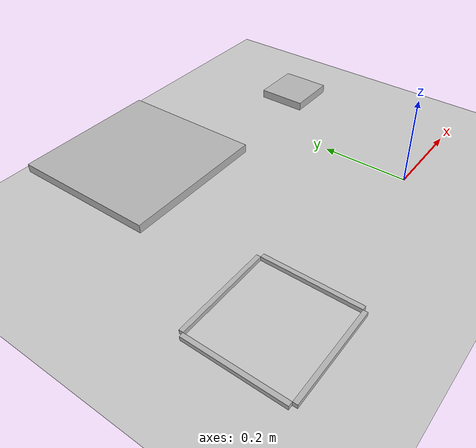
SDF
<sdf version="1.4">
 <world name="default">
  <physics type="ode"><real_time_update_rate>1000</real_time_update_rate></physics>
  <include><uri>model://ground_plane</uri></include>
  <light type="directional" name="sun">
   <pose>0 0 10 0 0 0</pose>
   <diffuse>0.8 0.8 0.8 1</diffuse>
   <attenuation>
    <range>1000</range>
    <constant>0.9</constant>
    <linear>0.01</linear>
    <quadratic>0.001</quadratic>
   </attenuation>
   <direction>-0.5 0.1 -0.9</direction>
  </light>
  <include>
   <pose>-0.4 0.4 -0.35 0.000000 0.000000 0.000000</pose>
   <uri>/home/kevin/research/gazebo/evaluation_platform_connect_to_AR605/models/table</uri>
  </include>
  <include>
   <pose>0 0.3 -0.35 0.000000 0.000000 0.000000</pose>
   <uri>/home/kevin/research/gazebo/evaluation_platform_connect_to_AR605/models/smalltable</uri>
  </include>
  <include>
   <pose>-0.5 0 0  0.000000 0.000000 0.000000</pose>
   <uri>/home/kevin/research/gazebo/arm_control_AR605/model/fixer_ar07</uri>
  </include>
  <plugin name="evaluation_platform_plugin" filename="/home/kevin/research/gazebo/evaluation_platform_connect_to_AR605/Debug/libevaluation_platform_connect_to_AR605.so"/>
 </world>
</sdf>

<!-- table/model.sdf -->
<sdf version="1.4">

<model name="table">
<static>true</static>

<link name="link">
			<pose>0.000000 0.000000 0.473684 0.000000 0.000000 0.000000</pose>
        <inertial>
            <mass>1</mass>
            <inertia>
               <ixx>0.5</ixx>
               <ixy>0.0</ixy>
               <iyy>0.5</iyy>
               <ixz>0.0</ixz>
               <iyz>0.0</iyz>
               <izz>0.5</izz>
            </inertia>
         </inertial>
			<collision name="collision">
				<geometry>
				<box>
					<size>0.3 0.3 0.0175</size>
				</box>
        </geometry>
      </collision>
      <visual name="visual">
        <geometry>
				<box>
					<size>0.3 0.3 0.0175</size>
				</box>
		  </geometry>
      </visual>
    </link>

</model>
</sdf>

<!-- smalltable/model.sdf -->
<sdf version="1.4">

<model name="smalltable">
<static>true</static>

<link name="link">
			<pose>0.000000 0.000000 0.473684 0.000000 0.000000 0.000000</pose>
        <inertial>
            <mass>1</mass>
            <inertia>
               <ixx>0.5</ixx>
               <ixy>0.0</ixy>
               <iyy>0.5</iyy>
               <ixz>0.0</ixz>
               <iyz>0.0</iyz>
               <izz>0.5</izz>
            </inertia>
         </inertial>
			<collision name="collision">
				<geometry>
				<box>
					<size>0.1 0.1 0.0175</size>
				</box>
        </geometry>
      </collision>
      <visual name="visual">
        <geometry>
				<box>
					<size>0.1 0.1 0.0175</size>
				</box>
		  </geometry>
      </visual>
    </link>

</model>
</sdf>

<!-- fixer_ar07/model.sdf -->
<sdf version="1.4">

 <model name="fixer_ar07">
         <static>true</static>
         <link name="fixer">
            <pose>-0.115 0.000000 0.005 0.000000 0.000000 0.000000</pose>
            <inertial>
               <mass>.1</mass>
               <inertia>
                  <ixx>0.05</ixx>
                  <ixy>0.0</ixy>
                  <iyy>0.05</iyy>
                  <ixz>0.0</ixz>
                  <iyz>0.0</iyz>
                  <izz>0.05</izz>
               </inertia>
            </inertial>
            <collision name="fixer">
               <surface>
                  <friction>
                     <ode>
                        <mu>100000.0</mu>
                        <mu2>100000.0</mu2>
                        <slip1>0.0</slip1>
                        <slip2>0.0</slip2>
                     </ode>
                  </friction>
               </surface>
               <geometry>
                  <box>
                     <size>0.01 0.22  0.01</size>
                  </box>
               </geometry>
            </collision>
            <visual name="visual">
               <geometry>
                  <box>
                     <size> 0.01 0.22 0.01</size>
                  </box>
               </geometry>
            </visual>
         </link>
         <link name="fixr">
            <pose> 0.000000 -0.115 0.005 0.000000 0.000000 0.000000</pose>
            <inertial>
               <mass>.1</mass>
               <inertia>
                  <ixx>0.05</ixx>
                  <ixy>0.0</ixy>
                  <iyy>0.05</iyy>
                  <ixz>0.0</ixz>
                  <iyz>0.0</iyz>
                  <izz>0.05</izz>
               </inertia>
            </inertial>
            <collision name="fixer">
               <surface>
                  <friction>
                     <ode>
                        <mu>100000.0</mu>
                        <mu2>100000.0</mu2>
                        <slip1>0.0</slip1>
                        <slip2>0.0</slip2>
                     </ode>
                  </friction>
               </surface>
               <geometry>
                  <box>
                     <size>0.22 0.01   0.01</size>
                  </box>
               </geometry>
            </collision>
            <visual name="visual">
               <geometry>
                  <box>
                     <size> 0.22 0.01 0.01</size>
                  </box>
               </geometry>
            </visual>
         </link>

         <link name="fixefr">
            <pose>0.115 0.000000 0.005 0.000000 0.000000 0.000000</pose>
            <inertial>
               <mass>.1</mass>
               <inertia>
                  <ixx>0.05</ixx>
                  <ixy>0.0</ixy>
                  <iyy>0.05</iyy>
                  <ixz>0.0</ixz>
                  <iyz>0.0</iyz>
                  <izz>0.05</izz>
               </inertia>
            </inertial>
            <collision name="fixer">
               <surface>
                  <friction>
                     <ode>
                        <mu>100000.0</mu>
                        <mu2>100000.0</mu2>
                        <slip1>0.0</slip1>
                        <slip2>0.0</slip2>
                     </ode>
                  </friction>
               </surface>
               <geometry>
                  <box>
                     <size>0.01 0.22  0.01</size>
                  </box>
               </geometry>
            </collision>
            <visual name="visual">
               <geometry>
                  <box>
                     <size> 0.01 0.22 0.01</size>
                  </box>
               </geometry>
            </visual>
         </link>
         <link name="fqixr">
            <pose> 0.000000 0.115 0.005 0.000000 0.000000 0.000000</pose>
            <inertial>
               <mass>.1</mass>
               <inertia>
                  <ixx>0.05</ixx>
                  <ixy>0.0</ixy>
                  <iyy>0.05</iyy>
                  <ixz>0.0</ixz>
                  <iyz>0.0</iyz>
                  <izz>0.05</izz>
               </inertia>
            </inertial>
            <collision name="fixer">
               <surface>
                  <friction>
                     <ode>
                        <mu>100000.0</mu>
                        <mu2>100000.0</mu2>
                        <slip1>0.0</slip1>
                        <slip2>0.0</slip2>
                     </ode>
                  </friction>
               </surface>
               <geometry>
                  <box>
                     <size>0.22 0.01   0.01</size>
                  </box>
               </geometry>
            </collision>
            <visual name="visual">
               <geometry>
                  <box>
                     <size> 0.22 0.01 0.01</size>
                  </box>
               </geometry>
            </visual>
         </link>

      </model>
</sdf>
